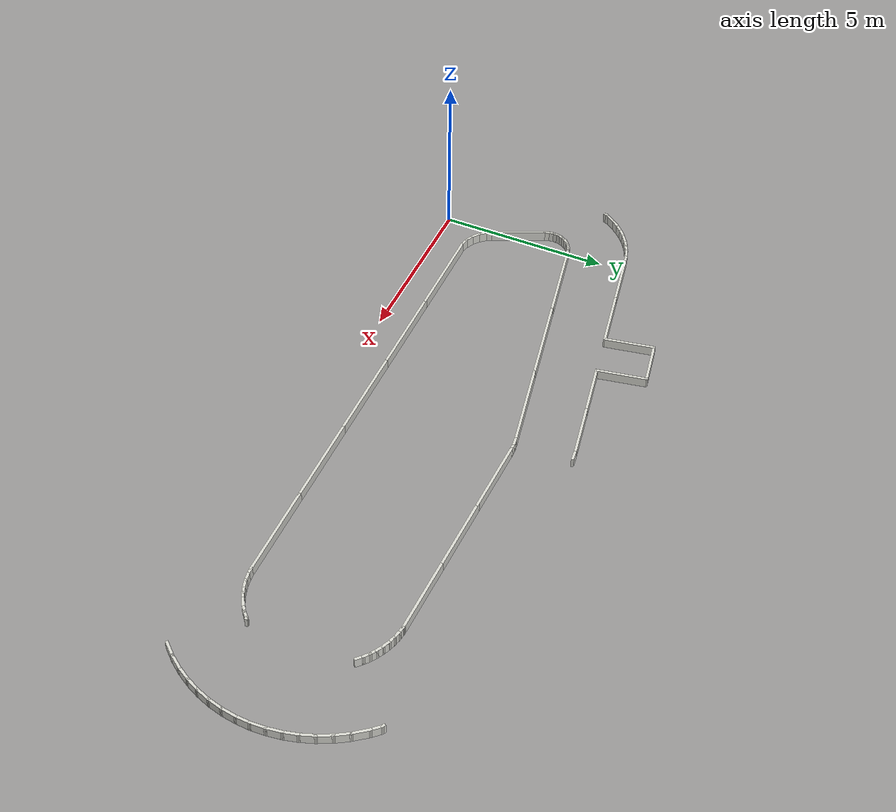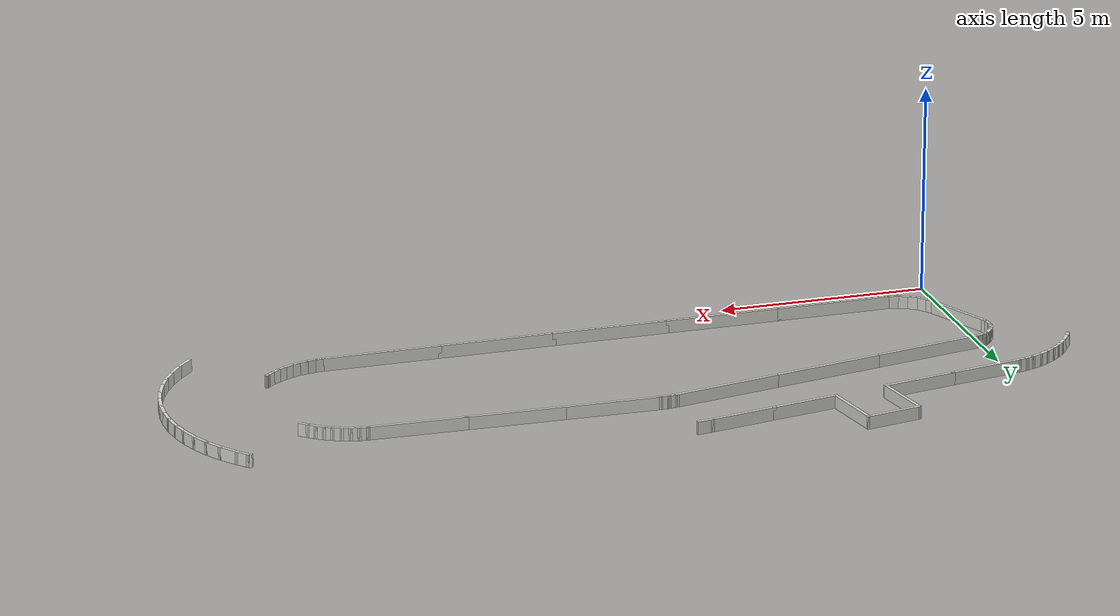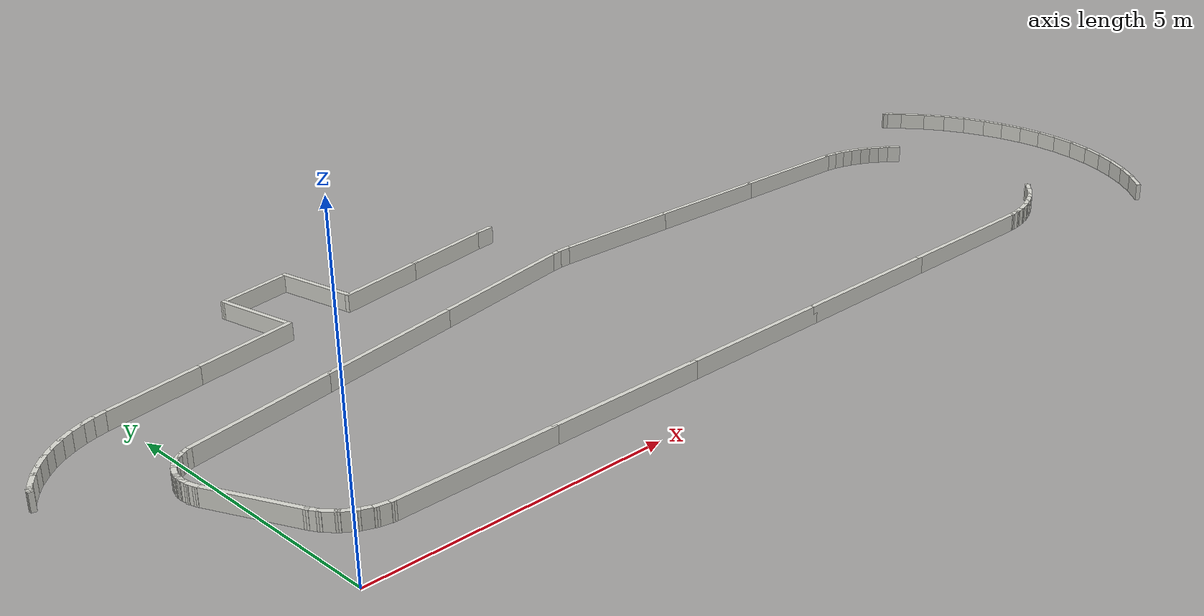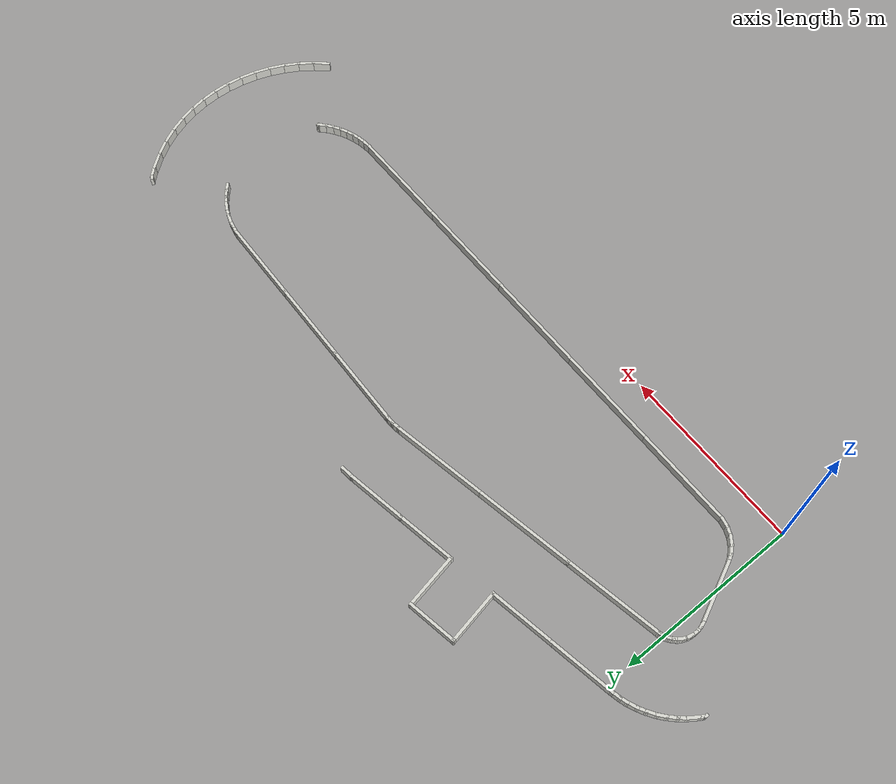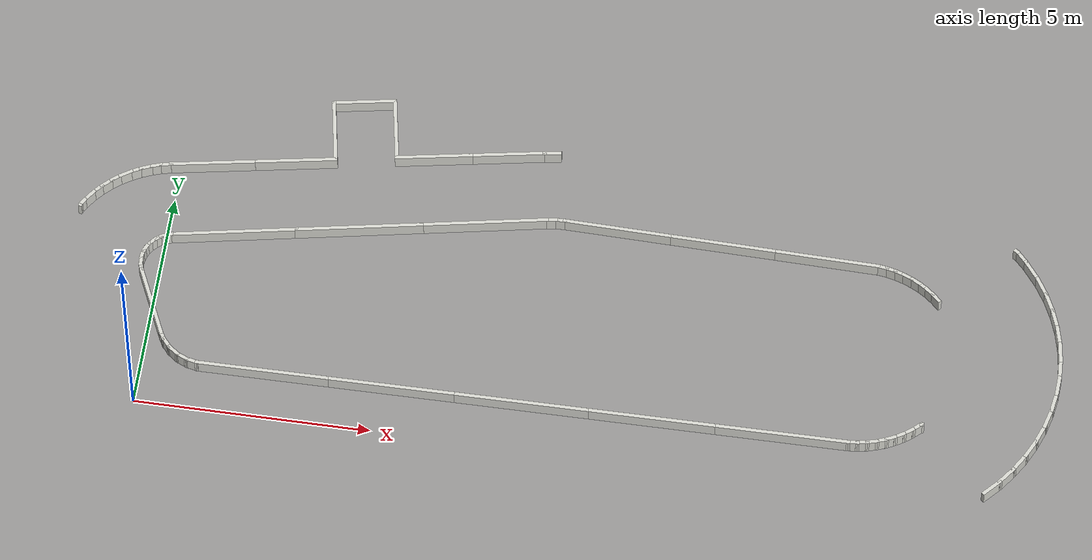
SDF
<sdf version="1.9">
 <world name="default">
  <model name="track_wall">
   <static>true</static>
   <link name="wall_link">
    <collision name="left1_0_0_collision">
     <pose>16.245064 4.807143 0.150000 0.000000 0.000000 2.377448</pose>
     <geometry><box><size>0.282328 0.080000 0.300000</size></box></geometry>
    </collision>
    <visual name="left1_0_0_visual">
     <pose>16.245064 4.807143 0.150000 0.000000 0.000000 2.377448</pose>
     <geometry><box><size>0.282328 0.080000 0.300000</size></box></geometry>
     <material><ambient>0.85 0.85 0.82 1</ambient><diffuse>0.85 0.85 0.82 1</diffuse></material>
    </visual>
    <collision name="left1_1_0_collision">
     <pose>16.098018 4.936217 0.150000 0.000000 0.000000 2.467919</pose>
     <geometry><box><size>0.269390 0.080000 0.300000</size></box></geometry>
    </collision>
    <visual name="left1_1_0_visual">
     <pose>16.098018 4.936217 0.150000 0.000000 0.000000 2.467919</pose>
     <geometry><box><size>0.269390 0.080000 0.300000</size></box></geometry>
     <material><ambient>0.85 0.85 0.82 1</ambient><diffuse>0.85 0.85 0.82 1</diffuse></material>
    </visual>
    <collision name="left1_2_0_collision">
     <pose>15.944914 5.047833 0.150000 0.000000 0.000000 2.555272</pose>
     <geometry><box><size>0.269913 0.080000 0.300000</size></box></geometry>
    </collision>
    <visual name="left1_2_0_visual">
     <pose>15.944914 5.047833 0.150000 0.000000 0.000000 2.555272</pose>
     <geometry><box><size>0.269913 0.080000 0.300000</size></box></geometry>
     <material><ambient>0.85 0.85 0.82 1</ambient><diffuse>0.85 0.85 0.82 1</diffuse></material>
    </visual>
    <collision name="left1_3_0_collision">
     <pose>15.782208 5.145936 0.150000 0.000000 0.000000 2.642626</pose>
     <geometry><box><size>0.270436 0.080000 0.300000</size></box></geometry>
    </collision>
    <visual name="left1_3_0_visual">
     <pose>15.782208 5.145936 0.150000 0.000000 0.000000 2.642626</pose>
     <geometry><box><size>0.270436 0.080000 0.300000</size></box></geometry>
     <material><ambient>0.85 0.85 0.82 1</ambient><diffuse>0.85 0.85 0.82 1</diffuse></material>
    </visual>
    <collision name="left1_4_0_collision">
     <pose>15.604712 5.232138 0.150000 0.000000 0.000000 2.733101</pose>
     <geometry><box><size>0.284609 0.080000 0.300000</size></box></geometry>
    </collision>
    <visual name="left1_4_0_visual">
     <pose>15.604712 5.232138 0.150000 0.000000 0.000000 2.733101</pose>
     <geometry><box><size>0.284609 0.080000 0.300000</size></box></geometry>
     <material><ambient>0.85 0.85 0.82 1</ambient><diffuse>0.85 0.85 0.82 1</diffuse></material>
    </visual>
    <collision name="left1_5_0_collision">
     <pose>15.419867 5.302719 0.150000 0.000000 0.000000 2.823570</pose>
     <geometry><box><size>0.271519 0.080000 0.300000</size></box></geometry>
    </collision>
    <visual name="left1_5_0_visual">
     <pose>15.419867 5.302719 0.150000 0.000000 0.000000 2.823570</pose>
     <geometry><box><size>0.271519 0.080000 0.300000</size></box></geometry>
     <material><ambient>0.85 0.85 0.82 1</ambient><diffuse>0.85 0.85 0.82 1</diffuse></material>
    </visual>
    <collision name="left1_6_0_collision">
     <pose>15.235431 5.354615 0.150000 0.000000 0.000000 2.910922</pose>
     <geometry><box><size>0.272042 0.080000 0.300000</size></box></geometry>
    </collision>
    <visual name="left1_6_0_visual">
     <pose>15.235431 5.354615 0.150000 0.000000 0.000000 2.910922</pose>
     <geometry><box><size>0.272042 0.080000 0.300000</size></box></geometry>
     <material><ambient>0.85 0.85 0.82 1</ambient><diffuse>0.85 0.85 0.82 1</diffuse></material>
    </visual>
    <collision name="left1_7_0_collision">
     <pose>15.046658 5.390321 0.150000 0.000000 0.000000 2.998273</pose>
     <geometry><box><size>0.272565 0.080000 0.300000</size></box></geometry>
    </collision>
    <visual name="left1_7_0_visual">
     <pose>15.046658 5.390321 0.150000 0.000000 0.000000 2.998273</pose>
     <geometry><box><size>0.272565 0.080000 0.300000</size></box></geometry>
     <material><ambient>0.85 0.85 0.82 1</ambient><diffuse>0.85 0.85 0.82 1</diffuse></material>
    </visual>
    <collision name="left1_8_0_collision">
     <pose>13.837557 5.429115 0.150000 0.000000 0.000000 3.119113</pose>
     <geometry><box><size>2.308176 0.080000 0.300000</size></box></geometry>
    </collision>
    <visual name="left1_8_0_visual">
     <pose>13.837557 5.429115 0.150000 0.000000 0.000000 3.119113</pose>
     <geometry><box><size>2.308176 0.080000 0.300000</size></box></geometry>
     <material><ambient>0.85 0.85 0.82 1</ambient><diffuse>0.85 0.85 0.82 1</diffuse></material>
    </visual>
    <collision name="left1_8_1_collision">
     <pose>11.609944 5.479198 0.150000 0.000000 0.000000 3.119113</pose>
     <geometry><box><size>2.308176 0.080000 0.300000</size></box></geometry>
    </collision>
    <visual name="left1_8_1_visual">
     <pose>11.609944 5.479198 0.150000 0.000000 0.000000 3.119113</pose>
     <geometry><box><size>2.308176 0.080000 0.300000</size></box></geometry>
     <material><ambient>0.85 0.85 0.82 1</ambient><diffuse>0.85 0.85 0.82 1</diffuse></material>
    </visual>
    <collision name="left1_8_2_collision">
     <pose>9.382331 5.529281 0.150000 0.000000 0.000000 3.119113</pose>
     <geometry><box><size>2.308176 0.080000 0.300000</size></box></geometry>
    </collision>
    <visual name="left1_8_2_visual">
     <pose>9.382331 5.529281 0.150000 0.000000 0.000000 3.119113</pose>
     <geometry><box><size>2.308176 0.080000 0.300000</size></box></geometry>
     <material><ambient>0.85 0.85 0.82 1</ambient><diffuse>0.85 0.85 0.82 1</diffuse></material>
    </visual>
    <collision name="left1_9_0_collision">
     <pose>8.170779 5.552047 0.150000 0.000000 0.000000 -3.118314</pose>
     <geometry><box><size>0.275545 0.080000 0.300000</size></box></geometry>
    </collision>
    <visual name="left1_9_0_visual">
     <pose>8.170779 5.552047 0.150000 0.000000 0.000000 -3.118314</pose>
     <geometry><box><size>0.275545 0.080000 0.300000</size></box></geometry>
     <material><ambient>0.85 0.85 0.82 1</ambient><diffuse>0.85 0.85 0.82 1</diffuse></material>
    </visual>
    <collision name="left1_10_0_collision">
     <pose>7.975637 5.535059 0.150000 0.000000 0.000000 -2.991667</pose>
     <geometry><box><size>0.277001 0.080000 0.300000</size></box></geometry>
    </collision>
    <visual name="left1_10_0_visual">
     <pose>7.975637 5.535059 0.150000 0.000000 0.000000 -2.991667</pose>
     <geometry><box><size>0.277001 0.080000 0.300000</size></box></geometry>
     <material><ambient>0.85 0.85 0.82 1</ambient><diffuse>0.85 0.85 0.82 1</diffuse></material>
    </visual>
    <collision name="left1_11_0_collision">
     <pose>6.582657 5.266902 0.150000 0.000000 0.000000 -2.948411</pose>
     <geometry><box><size>2.720281 0.080000 0.300000</size></box></geometry>
    </collision>
    <visual name="left1_11_0_visual">
     <pose>6.582657 5.266902 0.150000 0.000000 0.000000 -2.948411</pose>
     <geometry><box><size>2.720281 0.080000 0.300000</size></box></geometry>
     <material><ambient>0.85 0.85 0.82 1</ambient><diffuse>0.85 0.85 0.82 1</diffuse></material>
    </visual>
    <collision name="left1_11_1_collision">
     <pose>3.991489 4.760015 0.150000 0.000000 0.000000 -2.948411</pose>
     <geometry><box><size>2.720281 0.080000 0.300000</size></box></geometry>
    </collision>
    <visual name="left1_11_1_visual">
     <pose>3.991489 4.760015 0.150000 0.000000 0.000000 -2.948411</pose>
     <geometry><box><size>2.720281 0.080000 0.300000</size></box></geometry>
     <material><ambient>0.85 0.85 0.82 1</ambient><diffuse>0.85 0.85 0.82 1</diffuse></material>
    </visual>
    <collision name="left1_11_2_collision">
     <pose>1.400321 4.253127 0.150000 0.000000 0.000000 -2.948411</pose>
     <geometry><box><size>2.720281 0.080000 0.300000</size></box></geometry>
    </collision>
    <visual name="left1_11_2_visual">
     <pose>1.400321 4.253127 0.150000 0.000000 0.000000 -2.948411</pose>
     <geometry><box><size>2.720281 0.080000 0.300000</size></box></geometry>
     <material><ambient>0.85 0.85 0.82 1</ambient><diffuse>0.85 0.85 0.82 1</diffuse></material>
    </visual>
    <collision name="left1_12_0_collision">
     <pose>0.050308 3.980293 0.150000 0.000000 0.000000 -2.799365</pose>
     <geometry><box><size>0.195561 0.080000 0.300000</size></box></geometry>
    </collision>
    <visual name="left1_12_0_visual">
     <pose>0.050308 3.980293 0.150000 0.000000 0.000000 -2.799365</pose>
     <geometry><box><size>0.195561 0.080000 0.300000</size></box></geometry>
     <material><ambient>0.85 0.85 0.82 1</ambient><diffuse>0.85 0.85 0.82 1</diffuse></material>
    </visual>
    <collision name="left1_13_0_collision">
     <pose>-0.054631 3.933064 0.150000 0.000000 0.000000 -2.637851</pose>
     <geometry><box><size>0.195344 0.080000 0.300000</size></box></geometry>
    </collision>
    <visual name="left1_13_0_visual">
     <pose>-0.054631 3.933064 0.150000 0.000000 0.000000 -2.637851</pose>
     <geometry><box><size>0.195344 0.080000 0.300000</size></box></geometry>
     <material><ambient>0.85 0.85 0.82 1</ambient><diffuse>0.85 0.85 0.82 1</diffuse></material>
    </visual>
    <collision name="left1_14_0_collision">
     <pose>-0.150428 3.869693 0.150000 0.000000 0.000000 -2.476337</pose>
     <geometry><box><size>0.195127 0.080000 0.300000</size></box></geometry>
    </collision>
    <visual name="left1_14_0_visual">
     <pose>-0.150428 3.869693 0.150000 0.000000 0.000000 -2.476337</pose>
     <geometry><box><size>0.195127 0.080000 0.300000</size></box></geometry>
     <material><ambient>0.85 0.85 0.82 1</ambient><diffuse>0.85 0.85 0.82 1</diffuse></material>
    </visual>
    <collision name="left1_15_0_collision">
     <pose>-0.237328 3.788389 0.150000 0.000000 0.000000 -2.308615</pose>
     <geometry><box><size>0.203719 0.080000 0.300000</size></box></geometry>
    </collision>
    <visual name="left1_15_0_visual">
     <pose>-0.237328 3.788389 0.150000 0.000000 0.000000 -2.308615</pose>
     <geometry><box><size>0.203719 0.080000 0.300000</size></box></geometry>
     <material><ambient>0.85 0.85 0.82 1</ambient><diffuse>0.85 0.85 0.82 1</diffuse></material>
    </visual>
    <collision name="left1_16_0_collision">
     <pose>-0.311934 3.690441 0.150000 0.000000 0.000000 -2.134676</pose>
     <geometry><box><size>0.203467 0.080000 0.300000</size></box></geometry>
    </collision>
    <visual name="left1_16_0_visual">
     <pose>-0.311934 3.690441 0.150000 0.000000 0.000000 -2.134676</pose>
     <geometry><box><size>0.203467 0.080000 0.300000</size></box></geometry>
     <material><ambient>0.85 0.85 0.82 1</ambient><diffuse>0.85 0.85 0.82 1</diffuse></material>
    </visual>
    <collision name="left1_17_0_collision">
     <pose>-0.364895 3.589397 0.150000 0.000000 0.000000 -1.958682</pose>
     <geometry><box><size>0.185579 0.080000 0.300000</size></box></geometry>
    </collision>
    <visual name="left1_17_0_visual">
     <pose>-0.364895 3.589397 0.150000 0.000000 0.000000 -1.958682</pose>
     <geometry><box><size>0.185579 0.080000 0.300000</size></box></geometry>
     <material><ambient>0.85 0.85 0.82 1</ambient><diffuse>0.85 0.85 0.82 1</diffuse></material>
    </visual>
    <collision name="left1_18_0_collision">
     <pose>-0.397947 3.485108 0.150000 0.000000 0.000000 -1.802669</pose>
     <geometry><box><size>0.193889 0.080000 0.300000</size></box></geometry>
    </collision>
    <visual name="left1_18_0_visual">
     <pose>-0.397947 3.485108 0.150000 0.000000 0.000000 -1.802669</pose>
     <geometry><box><size>0.193889 0.080000 0.300000</size></box></geometry>
     <material><ambient>0.85 0.85 0.82 1</ambient><diffuse>0.85 0.85 0.82 1</diffuse></material>
    </visual>
    <collision name="left1_19_0_collision">
     <pose>-0.415014 3.373131 0.150000 0.000000 0.000000 -1.641059</pose>
     <geometry><box><size>0.193393 0.080000 0.300000</size></box></geometry>
    </collision>
    <visual name="left1_19_0_visual">
     <pose>-0.415014 3.373131 0.150000 0.000000 0.000000 -1.641059</pose>
     <geometry><box><size>0.193393 0.080000 0.300000</size></box></geometry>
     <material><ambient>0.85 0.85 0.82 1</ambient><diffuse>0.85 0.85 0.82 1</diffuse></material>
    </visual>
    <collision name="left1_20_0_collision">
     <pose>-0.411378 3.247593 0.150000 0.000000 0.000000 -1.460831</pose>
     <geometry><box><size>0.218802 0.080000 0.300000</size></box></geometry>
    </collision>
    <visual name="left1_20_0_visual">
     <pose>-0.411378 3.247593 0.150000 0.000000 0.000000 -1.460831</pose>
     <geometry><box><size>0.218802 0.080000 0.300000</size></box></geometry>
     <material><ambient>0.85 0.85 0.82 1</ambient><diffuse>0.85 0.85 0.82 1</diffuse></material>
    </visual>
    <collision name="left1_21_0_collision">
     <pose>-0.382779 3.112852 0.150000 0.000000 0.000000 -1.261923</pose>
     <geometry><box><size>0.218051 0.080000 0.300000</size></box></geometry>
    </collision>
    <visual name="left1_21_0_visual">
     <pose>-0.382779 3.112852 0.150000 0.000000 0.000000 -1.261923</pose>
     <geometry><box><size>0.218051 0.080000 0.300000</size></box></geometry>
     <material><ambient>0.85 0.85 0.82 1</ambient><diffuse>0.85 0.85 0.82 1</diffuse></material>
    </visual>
    <collision name="left1_22_0_collision">
     <pose>-0.022084 2.306559 0.150000 0.000000 0.000000 -1.140700</pose>
     <geometry><box><size>1.709474 0.080000 0.300000</size></box></geometry>
    </collision>
    <visual name="left1_22_0_visual">
     <pose>-0.022084 2.306559 0.150000 0.000000 0.000000 -1.140700</pose>
     <geometry><box><size>1.709474 0.080000 0.300000</size></box></geometry>
     <material><ambient>0.85 0.85 0.82 1</ambient><diffuse>0.85 0.85 0.82 1</diffuse></material>
    </visual>
    <collision name="left1_23_0_collision">
     <pose>0.360386 1.491090 0.150000 0.000000 0.000000 -1.052256</pose>
     <geometry><box><size>0.252549 0.080000 0.300000</size></box></geometry>
    </collision>
    <visual name="left1_23_0_visual">
     <pose>0.360386 1.491090 0.150000 0.000000 0.000000 -1.052256</pose>
     <geometry><box><size>0.252549 0.080000 0.300000</size></box></geometry>
     <material><ambient>0.85 0.85 0.82 1</ambient><diffuse>0.85 0.85 0.82 1</diffuse></material>
    </visual>
    <collision name="left1_24_0_collision">
     <pose>0.478938 1.327747 0.150000 0.000000 0.000000 -0.862083</pose>
     <geometry><box><size>0.312903 0.080000 0.300000</size></box></geometry>
    </collision>
    <visual name="left1_24_0_visual">
     <pose>0.478938 1.327747 0.150000 0.000000 0.000000 -0.862083</pose>
     <geometry><box><size>0.312903 0.080000 0.300000</size></box></geometry>
     <material><ambient>0.85 0.85 0.82 1</ambient><diffuse>0.85 0.85 0.82 1</diffuse></material>
    </visual>
    <collision name="left1_25_0_collision">
     <pose>0.651898 1.167006 0.150000 0.000000 0.000000 -0.639910</pose>
     <geometry><box><size>0.322265 0.080000 0.300000</size></box></geometry>
    </collision>
    <visual name="left1_25_0_visual">
     <pose>0.651898 1.167006 0.150000 0.000000 0.000000 -0.639910</pose>
     <geometry><box><size>0.322265 0.080000 0.300000</size></box></geometry>
     <material><ambient>0.85 0.85 0.82 1</ambient><diffuse>0.85 0.85 0.82 1</diffuse></material>
    </visual>
    <collision name="left1_26_0_collision">
     <pose>0.854188 1.046943 0.150000 0.000000 0.000000 -0.426219</pose>
     <geometry><box><size>0.310906 0.080000 0.300000</size></box></geometry>
    </collision>
    <visual name="left1_26_0_visual">
     <pose>0.854188 1.046943 0.150000 0.000000 0.000000 -0.426219</pose>
     <geometry><box><size>0.310906 0.080000 0.300000</size></box></geometry>
     <material><ambient>0.85 0.85 0.82 1</ambient><diffuse>0.85 0.85 0.82 1</diffuse></material>
    </visual>
    <collision name="left1_27_0_collision">
     <pose>1.072015 0.975472 0.150000 0.000000 0.000000 -0.207601</pose>
     <geometry><box><size>0.310350 0.080000 0.300000</size></box></geometry>
    </collision>
    <visual name="left1_27_0_visual">
     <pose>1.072015 0.975472 0.150000 0.000000 0.000000 -0.207601</pose>
     <geometry><box><size>0.310350 0.080000 0.300000</size></box></geometry>
     <material><ambient>0.85 0.85 0.82 1</ambient><diffuse>0.85 0.85 0.82 1</diffuse></material>
    </visual>
    <collision name="left1_28_0_collision">
     <pose>2.554374 0.959317 0.150000 0.000000 0.000000 0.005537</pose>
     <geometry><box><size>2.819356 0.080000 0.300000</size></box></geometry>
    </collision>
    <visual name="left1_28_0_visual">
     <pose>2.554374 0.959317 0.150000 0.000000 0.000000 0.005537</pose>
     <geometry><box><size>2.819356 0.080000 0.300000</size></box></geometry>
     <material><ambient>0.85 0.85 0.82 1</ambient><diffuse>0.85 0.85 0.82 1</diffuse></material>
    </visual>
    <collision name="left1_28_1_collision">
     <pose>5.293688 0.974486 0.150000 0.000000 0.000000 0.005537</pose>
     <geometry><box><size>2.819356 0.080000 0.300000</size></box></geometry>
    </collision>
    <visual name="left1_28_1_visual">
     <pose>5.293688 0.974486 0.150000 0.000000 0.000000 0.005537</pose>
     <geometry><box><size>2.819356 0.080000 0.300000</size></box></geometry>
     <material><ambient>0.85 0.85 0.82 1</ambient><diffuse>0.85 0.85 0.82 1</diffuse></material>
    </visual>
    <collision name="left1_28_2_collision">
     <pose>8.033002 0.989655 0.150000 0.000000 0.000000 0.005537</pose>
     <geometry><box><size>2.819356 0.080000 0.300000</size></box></geometry>
    </collision>
    <visual name="left1_28_2_visual">
     <pose>8.033002 0.989655 0.150000 0.000000 0.000000 0.005537</pose>
     <geometry><box><size>2.819356 0.080000 0.300000</size></box></geometry>
     <material><ambient>0.85 0.85 0.82 1</ambient><diffuse>0.85 0.85 0.82 1</diffuse></material>
    </visual>
    <collision name="left1_28_3_collision">
     <pose>10.772315 1.004823 0.150000 0.000000 0.000000 0.005537</pose>
     <geometry><box><size>2.819356 0.080000 0.300000</size></box></geometry>
    </collision>
    <visual name="left1_28_3_visual">
     <pose>10.772315 1.004823 0.150000 0.000000 0.000000 0.005537</pose>
     <geometry><box><size>2.819356 0.080000 0.300000</size></box></geometry>
     <material><ambient>0.85 0.85 0.82 1</ambient><diffuse>0.85 0.85 0.82 1</diffuse></material>
    </visual>
    <collision name="left1_28_4_collision">
     <pose>13.511629 1.019992 0.150000 0.000000 0.000000 0.005537</pose>
     <geometry><box><size>2.819356 0.080000 0.300000</size></box></geometry>
    </collision>
    <visual name="left1_28_4_visual">
     <pose>13.511629 1.019992 0.150000 0.000000 0.000000 0.005537</pose>
     <geometry><box><size>2.819356 0.080000 0.300000</size></box></geometry>
     <material><ambient>0.85 0.85 0.82 1</ambient><diffuse>0.85 0.85 0.82 1</diffuse></material>
    </visual>
    <collision name="left1_29_0_collision">
     <pose>14.975700 1.036059 0.150000 0.000000 0.000000 0.089606</pose>
     <geometry><box><size>0.269588 0.080000 0.300000</size></box></geometry>
    </collision>
    <visual name="left1_29_0_visual">
     <pose>14.975700 1.036059 0.150000 0.000000 0.000000 0.089606</pose>
     <geometry><box><size>0.269588 0.080000 0.300000</size></box></geometry>
     <material><ambient>0.85 0.85 0.82 1</ambient><diffuse>0.85 0.85 0.82 1</diffuse></material>
    </visual>
    <collision name="left1_30_0_collision">
     <pose>15.169956 1.062710 0.150000 0.000000 0.000000 0.179995</pose>
     <geometry><box><size>0.282963 0.080000 0.300000</size></box></geometry>
    </collision>
    <visual name="left1_30_0_visual">
     <pose>15.169956 1.062710 0.150000 0.000000 0.000000 0.179995</pose>
     <geometry><box><size>0.282963 0.080000 0.300000</size></box></geometry>
     <material><ambient>0.85 0.85 0.82 1</ambient><diffuse>0.85 0.85 0.82 1</diffuse></material>
    </visual>
    <collision name="left1_31_0_collision">
     <pose>15.367429 1.108266 0.150000 0.000000 0.000000 0.273501</pose>
     <geometry><box><size>0.282800 0.080000 0.300000</size></box></geometry>
    </collision>
    <visual name="left1_31_0_visual">
     <pose>15.367429 1.108266 0.150000 0.000000 0.000000 0.273501</pose>
     <geometry><box><size>0.282800 0.080000 0.300000</size></box></geometry>
     <material><ambient>0.85 0.85 0.82 1</ambient><diffuse>0.85 0.85 0.82 1</diffuse></material>
    </visual>
    <collision name="left1_32_0_collision">
     <pose>15.559632 1.172010 0.150000 0.000000 0.000000 0.367008</pose>
     <geometry><box><size>0.282637 0.080000 0.300000</size></box></geometry>
    </collision>
    <visual name="left1_32_0_visual">
     <pose>15.559632 1.172010 0.150000 0.000000 0.000000 0.367008</pose>
     <geometry><box><size>0.282637 0.080000 0.300000</size></box></geometry>
     <material><ambient>0.85 0.85 0.82 1</ambient><diffuse>0.85 0.85 0.82 1</diffuse></material>
    </visual>
    <collision name="left1_33_0_collision">
     <pose>15.738985 1.250096 0.150000 0.000000 0.000000 0.457399</pose>
     <geometry><box><size>0.268990 0.080000 0.300000</size></box></geometry>
    </collision>
    <visual name="left1_33_0_visual">
     <pose>15.738985 1.250096 0.150000 0.000000 0.000000 0.457399</pose>
     <geometry><box><size>0.268990 0.080000 0.300000</size></box></geometry>
     <material><ambient>0.85 0.85 0.82 1</ambient><diffuse>0.85 0.85 0.82 1</diffuse></material>
    </visual>
    <collision name="left1_34_0_collision">
     <pose>15.910125 1.344511 0.150000 0.000000 0.000000 0.547788</pose>
     <geometry><box><size>0.282322 0.080000 0.300000</size></box></geometry>
    </collision>
    <visual name="left1_34_0_visual">
     <pose>15.910125 1.344511 0.150000 0.000000 0.000000 0.547788</pose>
     <geometry><box><size>0.282322 0.080000 0.300000</size></box></geometry>
     <material><ambient>0.85 0.85 0.82 1</ambient><diffuse>0.85 0.85 0.82 1</diffuse></material>
    </visual>
    <collision name="left1_35_0_collision">
     <pose>16.082674 1.461961 0.150000 0.000000 0.000000 0.644410</pose>
     <geometry><box><size>0.295620 0.080000 0.300000</size></box></geometry>
    </collision>
    <visual name="left1_35_0_visual">
     <pose>16.082674 1.461961 0.150000 0.000000 0.000000 0.644410</pose>
     <geometry><box><size>0.295620 0.080000 0.300000</size></box></geometry>
     <material><ambient>0.85 0.85 0.82 1</ambient><diffuse>0.85 0.85 0.82 1</diffuse></material>
    </visual>
    <collision name="left1_36_0_collision">
     <pose>16.248107 1.599687 0.150000 0.000000 0.000000 0.744151</pose>
     <geometry><box><size>0.295435 0.080000 0.300000</size></box></geometry>
    </collision>
    <visual name="left1_36_0_visual">
     <pose>16.248107 1.599687 0.150000 0.000000 0.000000 0.744151</pose>
     <geometry><box><size>0.295435 0.080000 0.300000</size></box></geometry>
     <material><ambient>0.85 0.85 0.82 1</ambient><diffuse>0.85 0.85 0.82 1</diffuse></material>
    </visual>
    <collision name="left1_37_0_collision">
     <pose>16.335654 1.673911 0.150000 0.000000 0.000000 0.150796</pose>
     <geometry><box><size>0.096796 0.080000 0.300000</size></box></geometry>
    </collision>
    <visual name="left1_37_0_visual">
     <pose>16.335654 1.673911 0.150000 0.000000 0.000000 0.150796</pose>
     <geometry><box><size>0.096796 0.080000 0.300000</size></box></geometry>
     <material><ambient>0.85 0.85 0.82 1</ambient><diffuse>0.85 0.85 0.82 1</diffuse></material>
    </visual>
    <collision name="right0_0_0_collision">
     <pose>17.957593 0.378203 0.150000 0.000000 0.000000 0.841498</pose>
     <geometry><box><size>0.502693 0.080000 0.300000</size></box></geometry>
    </collision>
    <visual name="right0_0_0_visual">
     <pose>17.957593 0.378203 0.150000 0.000000 0.000000 0.841498</pose>
     <geometry><box><size>0.502693 0.080000 0.300000</size></box></geometry>
     <material><ambient>0.85 0.85 0.82 1</ambient><diffuse>0.85 0.85 0.82 1</diffuse></material>
    </visual>
    <collision name="right0_1_0_collision">
     <pose>18.222862 0.706619 0.150000 0.000000 0.000000 0.941231</pose>
     <geometry><box><size>0.502693 0.080000 0.300000</size></box></geometry>
    </collision>
    <visual name="right0_1_0_visual">
     <pose>18.222862 0.706619 0.150000 0.000000 0.000000 0.941231</pose>
     <geometry><box><size>0.502693 0.080000 0.300000</size></box></geometry>
     <material><ambient>0.85 0.85 0.82 1</ambient><diffuse>0.85 0.85 0.82 1</diffuse></material>
    </visual>
    <collision name="right0_2_0_collision">
     <pose>18.454114 1.059817 0.150000 0.000000 0.000000 1.040964</pose>
     <geometry><box><size>0.502693 0.080000 0.300000</size></box></geometry>
    </collision>
    <visual name="right0_2_0_visual">
     <pose>18.454114 1.059817 0.150000 0.000000 0.000000 1.040964</pose>
     <geometry><box><size>0.502693 0.080000 0.300000</size></box></geometry>
     <material><ambient>0.85 0.85 0.82 1</ambient><diffuse>0.85 0.85 0.82 1</diffuse></material>
    </visual>
    <collision name="right0_3_0_collision">
     <pose>18.644107 1.422028 0.150000 0.000000 0.000000 1.137581</pose>
     <geometry><box><size>0.476295 0.080000 0.300000</size></box></geometry>
    </collision>
    <visual name="right0_3_0_visual">
     <pose>18.644107 1.422028 0.150000 0.000000 0.000000 1.137581</pose>
     <geometry><box><size>0.476295 0.080000 0.300000</size></box></geometry>
     <material><ambient>0.85 0.85 0.82 1</ambient><diffuse>0.85 0.85 0.82 1</diffuse></material>
    </visual>
    <collision name="right0_4_0_collision">
     <pose>18.797090 1.801358 0.150000 0.000000 0.000000 1.234197</pose>
     <geometry><box><size>0.502693 0.080000 0.300000</size></box></geometry>
    </collision>
    <visual name="right0_4_0_visual">
     <pose>18.797090 1.801358 0.150000 0.000000 0.000000 1.234197</pose>
     <geometry><box><size>0.502693 0.080000 0.300000</size></box></geometry>
     <material><ambient>0.85 0.85 0.82 1</ambient><diffuse>0.85 0.85 0.82 1</diffuse></material>
    </visual>
    <collision name="right0_5_0_collision">
     <pose>18.916488 2.206289 0.150000 0.000000 0.000000 1.333930</pose>
     <geometry><box><size>0.502693 0.080000 0.300000</size></box></geometry>
    </collision>
    <visual name="right0_5_0_visual">
     <pose>18.916488 2.206289 0.150000 0.000000 0.000000 1.333930</pose>
     <geometry><box><size>0.502693 0.080000 0.300000</size></box></geometry>
     <material><ambient>0.85 0.85 0.82 1</ambient><diffuse>0.85 0.85 0.82 1</diffuse></material>
    </visual>
    <collision name="right0_6_0_collision">
     <pose>18.994974 2.621097 0.150000 0.000000 0.000000 1.433663</pose>
     <geometry><box><size>0.502693 0.080000 0.300000</size></box></geometry>
    </collision>
    <visual name="right0_6_0_visual">
     <pose>18.994974 2.621097 0.150000 0.000000 0.000000 1.433663</pose>
     <geometry><box><size>0.502693 0.080000 0.300000</size></box></geometry>
     <material><ambient>0.85 0.85 0.82 1</ambient><diffuse>0.85 0.85 0.82 1</diffuse></material>
    </visual>
    <collision name="right0_7_0_collision">
     <pose>19.031892 3.028444 0.150000 0.000000 0.000000 1.530280</pose>
     <geometry><box><size>0.476295 0.080000 0.300000</size></box></geometry>
    </collision>
    <visual name="right0_7_0_visual">
     <pose>19.031892 3.028444 0.150000 0.000000 0.000000 1.530280</pose>
     <geometry><box><size>0.476295 0.080000 0.300000</size></box></geometry>
     <material><ambient>0.85 0.85 0.82 1</ambient><diffuse>0.85 0.85 0.82 1</diffuse></material>
    </visual>
    <collision name="right0_8_0_collision">
     <pose>19.028067 3.437443 0.150000 0.000000 0.000000 1.626896</pose>
     <geometry><box><size>0.502693 0.080000 0.300000</size></box></geometry>
    </collision>
    <visual name="right0_8_0_visual">
     <pose>19.028067 3.437443 0.150000 0.000000 0.000000 1.626896</pose>
     <geometry><box><size>0.502693 0.080000 0.300000</size></box></geometry>
     <material><ambient>0.85 0.85 0.82 1</ambient><diffuse>0.85 0.85 0.82 1</diffuse></material>
    </visual>
    <collision name="right0_9_0_collision">
     <pose>18.983415 3.857243 0.150000 0.000000 0.000000 1.726629</pose>
     <geometry><box><size>0.502693 0.080000 0.300000</size></box></geometry>
    </collision>
    <visual name="right0_9_0_visual">
     <pose>18.983415 3.857243 0.150000 0.000000 0.000000 1.726629</pose>
     <geometry><box><size>0.502693 0.080000 0.300000</size></box></geometry>
     <material><ambient>0.85 0.85 0.82 1</ambient><diffuse>0.85 0.85 0.82 1</diffuse></material>
    </visual>
    <collision name="right0_10_0_collision">
     <pose>18.901121 4.257895 0.150000 0.000000 0.000000 1.823246</pose>
     <geometry><box><size>0.476295 0.080000 0.300000</size></box></geometry>
    </collision>
    <visual name="right0_10_0_visual">
     <pose>18.901121 4.257895 0.150000 0.000000 0.000000 1.823246</pose>
     <geometry><box><size>0.476295 0.080000 0.300000</size></box></geometry>
     <material><ambient>0.85 0.85 0.82 1</ambient><diffuse>0.85 0.85 0.82 1</diffuse></material>
    </visual>
    <collision name="right0_11_0_collision">
     <pose>18.779344 4.648363 0.150000 0.000000 0.000000 1.919862</pose>
     <geometry><box><size>0.502693 0.080000 0.300000</size></box></geometry>
    </collision>
    <visual name="right0_11_0_visual">
     <pose>18.779344 4.648363 0.150000 0.000000 0.000000 1.919862</pose>
     <geometry><box><size>0.502693 0.080000 0.300000</size></box></geometry>
     <material><ambient>0.85 0.85 0.82 1</ambient><diffuse>0.85 0.85 0.82 1</diffuse></material>
    </visual>
    <collision name="right0_12_0_collision">
     <pose>18.615359 5.037380 0.150000 0.000000 0.000000 2.019595</pose>
     <geometry><box><size>0.502693 0.080000 0.300000</size></box></geometry>
    </collision>
    <visual name="right0_12_0_visual">
     <pose>18.615359 5.037380 0.150000 0.000000 0.000000 2.019595</pose>
     <geometry><box><size>0.502693 0.080000 0.300000</size></box></geometry>
     <material><ambient>0.85 0.85 0.82 1</ambient><diffuse>0.85 0.85 0.82 1</diffuse></material>
    </visual>
    <collision name="right0_13_0_collision">
     <pose>18.413456 5.408137 0.150000 0.000000 0.000000 2.119328</pose>
     <geometry><box><size>0.502693 0.080000 0.300000</size></box></geometry>
    </collision>
    <visual name="right0_13_0_visual">
     <pose>18.413456 5.408137 0.150000 0.000000 0.000000 2.119328</pose>
     <geometry><box><size>0.502693 0.080000 0.300000</size></box></geometry>
     <material><ambient>0.85 0.85 0.82 1</ambient><diffuse>0.85 0.85 0.82 1</diffuse></material>
    </visual>
    <collision name="right0_14_0_collision">
     <pose>18.158526 5.777088 0.150000 0.000000 0.000000 2.225295</pose>
     <geometry><box><size>0.555477 0.080000 0.300000</size></box></geometry>
    </collision>
    <visual name="right0_14_0_visual">
     <pose>18.158526 5.777088 0.150000 0.000000 0.000000 2.225295</pose>
     <geometry><box><size>0.555477 0.080000 0.300000</size></box></geometry>
     <material><ambient>0.85 0.85 0.82 1</ambient><diffuse>0.85 0.85 0.82 1</diffuse></material>
    </visual>
    <collision name="right0_15_0_collision">
     <pose>17.915281 6.072542 0.150000 0.000000 0.000000 2.315678</pose>
     <geometry><box><size>0.370665 0.080000 0.300000</size></box></geometry>
    </collision>
    <visual name="right0_15_0_visual">
     <pose>17.915281 6.072542 0.150000 0.000000 0.000000 2.315678</pose>
     <geometry><box><size>0.370665 0.080000 0.300000</size></box></geometry>
     <material><ambient>0.85 0.85 0.82 1</ambient><diffuse>0.85 0.85 0.82 1</diffuse></material>
    </visual>
    <collision name="right0_16_0_collision">
     <pose>17.794411 6.194365 0.150000 0.000000 0.000000 2.551208</pose>
     <geometry><box><size>0.133813 0.080000 0.300000</size></box></geometry>
    </collision>
    <visual name="right0_16_0_visual">
     <pose>17.794411 6.194365 0.150000 0.000000 0.000000 2.551208</pose>
     <geometry><box><size>0.133813 0.080000 0.300000</size></box></geometry>
     <material><ambient>0.85 0.85 0.82 1</ambient><diffuse>0.85 0.85 0.82 1</diffuse></material>
    </visual>
    <collision name="right2_0_0_collision">
     <pose>7.750005 7.200185 0.150000 0.000000 0.000000 -3.006456</pose>
     <geometry><box><size>0.403176 0.080000 0.300000</size></box></geometry>
    </collision>
    <visual name="right2_0_0_visual">
     <pose>7.750005 7.200185 0.150000 0.000000 0.000000 -3.006456</pose>
     <geometry><box><size>0.403176 0.080000 0.300000</size></box></geometry>
     <material><ambient>0.85 0.85 0.82 1</ambient><diffuse>0.85 0.85 0.82 1</diffuse></material>
    </visual>
    <collision name="right2_1_0_collision">
     <pose>6.816961 7.035738 0.150000 0.000000 0.000000 -2.959055</pose>
     <geometry><box><size>1.651975 0.080000 0.300000</size></box></geometry>
    </collision>
    <visual name="right2_1_0_visual">
     <pose>6.816961 7.035738 0.150000 0.000000 0.000000 -2.959055</pose>
     <geometry><box><size>1.651975 0.080000 0.300000</size></box></geometry>
     <material><ambient>0.85 0.85 0.82 1</ambient><diffuse>0.85 0.85 0.82 1</diffuse></material>
    </visual>
    <collision name="right2_1_1_collision">
     <pose>5.271102 6.750385 0.150000 0.000000 0.000000 -2.959055</pose>
     <geometry><box><size>1.651975 0.080000 0.300000</size></box></geometry>
    </collision>
    <visual name="right2_1_1_visual">
     <pose>5.271102 6.750385 0.150000 0.000000 0.000000 -2.959055</pose>
     <geometry><box><size>1.651975 0.080000 0.300000</size></box></geometry>
     <material><ambient>0.85 0.85 0.82 1</ambient><diffuse>0.85 0.85 0.82 1</diffuse></material>
    </visual>
    <collision name="right4_0_0_collision">
     <pose>2.362207 6.213327 0.150000 0.000000 0.000000 -2.958968</pose>
     <geometry><box><size>1.824908 0.080000 0.300000</size></box></geometry>
    </collision>
    <visual name="right4_0_0_visual">
     <pose>2.362207 6.213327 0.150000 0.000000 0.000000 -2.958968</pose>
     <geometry><box><size>1.824908 0.080000 0.300000</size></box></geometry>
     <material><ambient>0.85 0.85 0.82 1</ambient><diffuse>0.85 0.85 0.82 1</diffuse></material>
    </visual>
    <collision name="right4_0_1_collision">
     <pose>0.646316 5.896431 0.150000 0.000000 0.000000 -2.958968</pose>
     <geometry><box><size>1.824908 0.080000 0.300000</size></box></geometry>
    </collision>
    <visual name="right4_0_1_visual">
     <pose>0.646316 5.896431 0.150000 0.000000 0.000000 -2.958968</pose>
     <geometry><box><size>1.824908 0.080000 0.300000</size></box></geometry>
     <material><ambient>0.85 0.85 0.82 1</ambient><diffuse>0.85 0.85 0.82 1</diffuse></material>
    </visual>
    <collision name="right4_1_0_collision">
     <pose>-0.316450 5.712298 0.150000 0.000000 0.000000 -2.901284</pose>
     <geometry><box><size>0.295845 0.080000 0.300000</size></box></geometry>
    </collision>
    <visual name="right4_1_0_visual">
     <pose>-0.316450 5.712298 0.150000 0.000000 0.000000 -2.901284</pose>
     <geometry><box><size>0.295845 0.080000 0.300000</size></box></geometry>
     <material><ambient>0.85 0.85 0.82 1</ambient><diffuse>0.85 0.85 0.82 1</diffuse></material>
    </visual>
    <collision name="right4_2_0_collision">
     <pose>-0.509081 5.657410 0.150000 0.000000 0.000000 -2.820537</pose>
     <geometry><box><size>0.265075 0.080000 0.300000</size></box></geometry>
    </collision>
    <visual name="right4_2_0_visual">
     <pose>-0.509081 5.657410 0.150000 0.000000 0.000000 -2.820537</pose>
     <geometry><box><size>0.265075 0.080000 0.300000</size></box></geometry>
     <material><ambient>0.85 0.85 0.82 1</ambient><diffuse>0.85 0.85 0.82 1</diffuse></material>
    </visual>
    <collision name="right4_3_0_collision">
     <pose>-0.710158 5.579245 0.150000 0.000000 0.000000 -2.733578</pose>
     <geometry><box><size>0.326795 0.080000 0.300000</size></box></geometry>
    </collision>
    <visual name="right4_3_0_visual">
     <pose>-0.710158 5.579245 0.150000 0.000000 0.000000 -2.733578</pose>
     <geometry><box><size>0.326795 0.080000 0.300000</size></box></geometry>
     <material><ambient>0.85 0.85 0.82 1</ambient><diffuse>0.85 0.85 0.82 1</diffuse></material>
    </visual>
    <collision name="right4_4_0_collision">
     <pose>-0.918158 5.478384 0.150000 0.000000 0.000000 -2.640409</pose>
     <geometry><box><size>0.296034 0.080000 0.300000</size></box></geometry>
    </collision>
    <visual name="right4_4_0_visual">
     <pose>-0.918158 5.478384 0.150000 0.000000 0.000000 -2.640409</pose>
     <geometry><box><size>0.296034 0.080000 0.300000</size></box></geometry>
     <material><ambient>0.85 0.85 0.82 1</ambient><diffuse>0.85 0.85 0.82 1</diffuse></material>
    </visual>
    <collision name="right4_5_0_collision">
     <pose>-1.115190 5.357344 0.150000 0.000000 0.000000 -2.547238</pose>
     <geometry><box><size>0.326949 0.080000 0.300000</size></box></geometry>
    </collision>
    <visual name="right4_5_0_visual">
     <pose>-1.115190 5.357344 0.150000 0.000000 0.000000 -2.547238</pose>
     <geometry><box><size>0.326949 0.080000 0.300000</size></box></geometry>
     <material><ambient>0.85 0.85 0.82 1</ambient><diffuse>0.85 0.85 0.82 1</diffuse></material>
    </visual>
    <collision name="right4_6_0_collision">
     <pose>-1.301020 5.219608 0.150000 0.000000 0.000000 -2.454069</pose>
     <geometry><box><size>0.296169 0.080000 0.300000</size></box></geometry>
    </collision>
    <visual name="right4_6_0_visual">
     <pose>-1.301020 5.219608 0.150000 0.000000 0.000000 -2.454069</pose>
     <geometry><box><size>0.296169 0.080000 0.300000</size></box></geometry>
     <material><ambient>0.85 0.85 0.82 1</ambient><diffuse>0.85 0.85 0.82 1</diffuse></material>
    </visual>
    <collision name="right4_7_0_collision">
     <pose>-1.472324 5.064063 0.150000 0.000000 0.000000 -2.360899</pose>
     <geometry><box><size>0.327103 0.080000 0.300000</size></box></geometry>
    </collision>
    <visual name="right4_7_0_visual">
     <pose>-1.472324 5.064063 0.150000 0.000000 0.000000 -2.360899</pose>
     <geometry><box><size>0.327103 0.080000 0.300000</size></box></geometry>
     <material><ambient>0.85 0.85 0.82 1</ambient><diffuse>0.85 0.85 0.82 1</diffuse></material>
    </visual>
    <collision name="right4_8_0_collision">
     <pose>-1.629518 4.894178 0.150000 0.000000 0.000000 -2.267730</pose>
     <geometry><box><size>0.296304 0.080000 0.300000</size></box></geometry>
    </collision>
    <visual name="right4_8_0_visual">
     <pose>-1.629518 4.894178 0.150000 0.000000 0.000000 -2.267730</pose>
     <geometry><box><size>0.296304 0.080000 0.300000</size></box></geometry>
     <material><ambient>0.85 0.85 0.82 1</ambient><diffuse>0.85 0.85 0.82 1</diffuse></material>
    </visual>
    <collision name="right4_9_0_collision">
     <pose>-1.777181 4.696275 0.150000 0.000000 0.000000 -2.168348</pose>
     <geometry><box><size>0.358140 0.080000 0.300000</size></box></geometry>
    </collision>
    <visual name="right4_9_0_visual">
     <pose>-1.777181 4.696275 0.150000 0.000000 0.000000 -2.168348</pose>
     <geometry><box><size>0.358140 0.080000 0.300000</size></box></geometry>
     <material><ambient>0.85 0.85 0.82 1</ambient><diffuse>0.85 0.85 0.82 1</diffuse></material>
    </visual>
    <collision name="right4_10_0_collision">
     <pose>-1.885985 4.527529 0.150000 0.000000 0.000000 -2.087604</pose>
     <geometry><box><size>0.203703 0.080000 0.300000</size></box></geometry>
    </collision>
    <visual name="right4_10_0_visual">
     <pose>-1.885985 4.527529 0.150000 0.000000 0.000000 -2.087604</pose>
     <geometry><box><size>0.203703 0.080000 0.300000</size></box></geometry>
     <material><ambient>0.85 0.85 0.82 1</ambient><diffuse>0.85 0.85 0.82 1</diffuse></material>
    </visual>
    <collision name="right4_11_0_collision">
     <pose>-1.919353 4.457802 0.150000 0.000000 0.000000 -1.744925</pose>
     <geometry><box><size>0.112397 0.080000 0.300000</size></box></geometry>
    </collision>
    <visual name="right4_11_0_visual">
     <pose>-1.919353 4.457802 0.150000 0.000000 0.000000 -1.744925</pose>
     <geometry><box><size>0.112397 0.080000 0.300000</size></box></geometry>
     <material><ambient>0.85 0.85 0.82 1</ambient><diffuse>0.85 0.85 0.82 1</diffuse></material>
    </visual>
    <collision name="alcove0a_0_0_collision">
     <pose>4.363048 7.335257 0.150000 0.000000 0.000000 1.758558</pose>
     <geometry><box><size>1.480000 0.080000 0.300000</size></box></geometry>
    </collision>
    <visual name="alcove0a_0_0_visual">
     <pose>4.363048 7.335257 0.150000 0.000000 0.000000 1.758558</pose>
     <geometry><box><size>1.480000 0.080000 0.300000</size></box></geometry>
     <material><ambient>0.85 0.85 0.82 1</ambient><diffuse>0.85 0.85 0.82 1</diffuse></material>
    </visual>
    <collision name="alcove0b_0_0_collision">
     <pose>3.084633 7.099250 0.150000 0.000000 0.000000 1.758558</pose>
     <geometry><box><size>1.480000 0.080000 0.300000</size></box></geometry>
    </collision>
    <visual name="alcove0b_0_0_visual">
     <pose>3.084633 7.099250 0.150000 0.000000 0.000000 1.758558</pose>
     <geometry><box><size>1.480000 0.080000 0.300000</size></box></geometry>
     <material><ambient>0.85 0.85 0.82 1</ambient><diffuse>0.85 0.85 0.82 1</diffuse></material>
    </visual>
    <collision name="alcove0c_0_0_collision">
     <pose>3.593178 7.904951 0.150000 0.000000 0.000000 -2.959039</pose>
     <geometry><box><size>1.380018 0.080000 0.300000</size></box></geometry>
    </collision>
    <visual name="alcove0c_0_0_visual">
     <pose>3.593178 7.904951 0.150000 0.000000 0.000000 -2.959039</pose>
     <geometry><box><size>1.380018 0.080000 0.300000</size></box></geometry>
     <material><ambient>0.85 0.85 0.82 1</ambient><diffuse>0.85 0.85 0.82 1</diffuse></material>
    </visual>
   </link>
  </model>
 </world>
</sdf>
